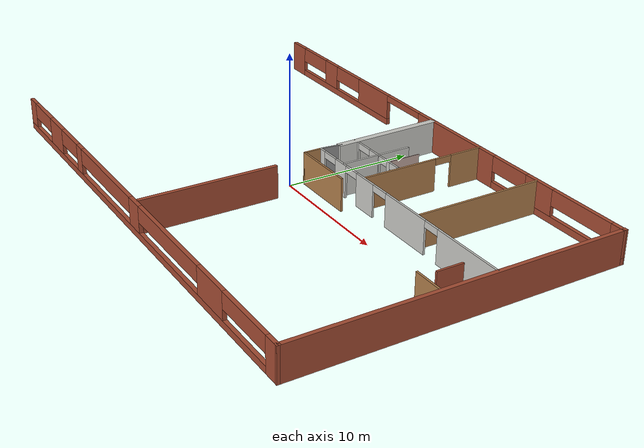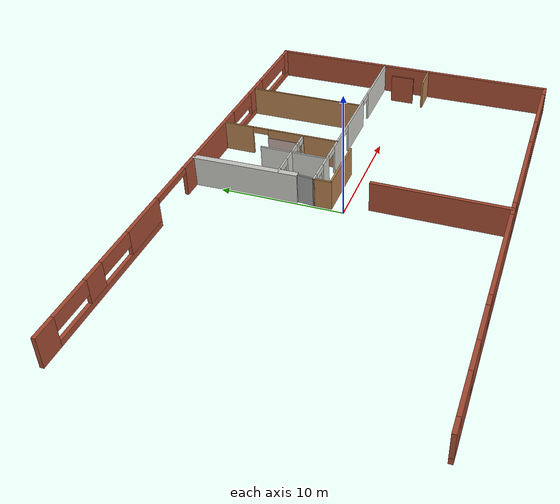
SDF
<sdf version="1.6">
 <model name="Building">
  <pose>-0.973623 0.034241 0 0 -0 0</pose>
  <link name="Wall_18">
   <pose>0.905623 12.3125 0 0 -0 0</pose>
   <visual name="Wall_18_Visual_0">
    <pose>-19.2672 0 1.25 0 -0 0</pose>
    <geometry><box><size>1.86558 0.3 2.5</size></box></geometry>
    <material>
     <script><uri>file://media/materials/scripts/gazebo.material</uri><name>Gazebo/Bricks</name></script>
     <ambient>1 1 1 1</ambient>
    </material>
    <meta><layer>0</layer></meta>
   </visual>
   <collision name="Wall_18_Collision_0">
    <geometry><box><size>1.86558 0.3 2.5</size></box></geometry>
    <pose>-19.2672 0 1.25 0 -0 0</pose>
   </collision>
   <visual name="Wall_18_Visual_1">
    <pose>3.08951 0 1.25 0 -0 0</pose>
    <geometry><box><size>8.93043 0.3 2.5</size></box></geometry>
    <material>
     <script><uri>file://media/materials/scripts/gazebo.material</uri><name>Gazebo/Bricks</name></script>
     <ambient>1 1 1 1</ambient>
    </material>
    <meta><layer>0</layer></meta>
   </visual>
   <collision name="Wall_18_Collision_1">
    <geometry><box><size>8.93043 0.3 2.5</size></box></geometry>
    <pose>3.08951 0 1.25 0 -0 0</pose>
   </collision>
   <visual name="Wall_18_Visual_2">
    <pose>-11.9358 0 0.25 0 -0 0</pose>
    <geometry><box><size>12.7972 0.3 0.5</size></box></geometry>
    <material>
     <script><uri>file://media/materials/scripts/gazebo.material</uri><name>Gazebo/Bricks</name></script>
     <ambient>1 1 1 1</ambient>
    </material>
    <meta><layer>0</layer></meta>
   </visual>
   <collision name="Wall_18_Collision_2">
    <geometry><box><size>12.7972 0.3 0.5</size></box></geometry>
    <pose>-11.9358 0 0.25 0 -0 0</pose>
   </collision>
   <visual name="Wall_18_Visual_3">
    <pose>13.8774 0 0.25 0 -0 0</pose>
    <geometry><box><size>12.6453 0.3 0.5</size></box></geometry>
    <material>
     <script><uri>file://media/materials/scripts/gazebo.material</uri><name>Gazebo/Bricks</name></script>
     <ambient>1 1 1 1</ambient>
    </material>
    <meta><layer>0</layer></meta>
   </visual>
   <collision name="Wall_18_Collision_3">
    <geometry><box><size>12.6453 0.3 0.5</size></box></geometry>
    <pose>13.8774 0 0.25 0 -0 0</pose>
   </collision>
   <visual name="Wall_18_Visual_4">
    <pose>-13.9321 0 1.5 0 -0 0</pose>
    <geometry><box><size>1.8072 0.3 2</size></box></geometry>
    <material>
     <script><uri>file://media/materials/scripts/gazebo.material</uri><name>Gazebo/Bricks</name></script>
     <ambient>1 1 1 1</ambient>
    </material>
    <meta><layer>0</layer></meta>
   </visual>
   <collision name="Wall_18_Collision_4">
    <geometry><box><size>1.8072 0.3 2</size></box></geometry>
    <pose>-13.9321 0 1.5 0 -0 0</pose>
   </collision>
   <visual name="Wall_18_Visual_5">
    <pose>-7.60468 0 1.5 0 -0 0</pose>
    <geometry><box><size>4.135 0.3 2</size></box></geometry>
    <material>
     <script><uri>file://media/materials/scripts/gazebo.material</uri><name>Gazebo/Bricks</name></script>
     <ambient>1 1 1 1</ambient>
    </material>
    <meta><layer>0</layer></meta>
   </visual>
   <collision name="Wall_18_Collision_5">
    <geometry><box><size>4.135 0.3 2</size></box></geometry>
    <pose>-7.60468 0 1.5 0 -0 0</pose>
   </collision>
   <visual name="Wall_18_Visual_6">
    <pose>-7.60468 0 1.5 0 -0 0</pose>
    <geometry><box><size>4.135 0.3 2</size></box></geometry>
    <material>
     <script><uri>file://media/materials/scripts/gazebo.material</uri><name>Gazebo/Bricks</name></script>
     <ambient>1 1 1 1</ambient>
    </material>
    <meta><layer>0</layer></meta>
   </visual>
   <collision name="Wall_18_Collision_6">
    <geometry><box><size>4.135 0.3 2</size></box></geometry>
    <pose>-7.60468 0 1.5 0 -0 0</pose>
   </collision>
   <visual name="Wall_18_Visual_7">
    <pose>12.3457 0 1.5 0 -0 0</pose>
    <geometry><box><size>2.62855 0.3 2</size></box></geometry>
    <material>
     <script><uri>file://media/materials/scripts/gazebo.material</uri><name>Gazebo/Bricks</name></script>
     <ambient>1 1 1 1</ambient>
    </material>
    <meta><layer>0</layer></meta>
   </visual>
   <collision name="Wall_18_Collision_7">
    <geometry><box><size>2.62855 0.3 2</size></box></geometry>
    <pose>12.3457 0 1.5 0 -0 0</pose>
   </collision>
   <visual name="Wall_18_Visual_8">
    <pose>19.6307 0 1.5 0 -0 0</pose>
    <geometry><box><size>1.13859 0.3 2</size></box></geometry>
    <material>
     <script><uri>file://media/materials/scripts/gazebo.material</uri><name>Gazebo/Bricks</name></script>
     <ambient>1 1 1 1</ambient>
    </material>
    <meta><layer>0</layer></meta>
   </visual>
   <collision name="Wall_18_Collision_8">
    <geometry><box><size>1.13859 0.3 2</size></box></geometry>
    <pose>19.6307 0 1.5 0 -0 0</pose>
   </collision>
   <visual name="Wall_18_Visual_9">
    <pose>-16.5851 0 1.9 0 -0 0</pose>
    <geometry><box><size>3.49867 0.3 1.2</size></box></geometry>
    <material>
     <script><uri>file://media/materials/scripts/gazebo.material</uri><name>Gazebo/Bricks</name></script>
     <ambient>1 1 1 1</ambient>
    </material>
    <meta><layer>0</layer></meta>
   </visual>
   <collision name="Wall_18_Collision_9">
    <geometry><box><size>3.49867 0.3 1.2</size></box></geometry>
    <pose>-16.5851 0 1.9 0 -0 0</pose>
   </collision>
   <visual name="Wall_18_Visual_10">
    <pose>9.29306 0 1.9 0 -0 0</pose>
    <geometry><box><size>3.47667 0.3 1.2</size></box></geometry>
    <material>
     <script><uri>file://media/materials/scripts/gazebo.material</uri><name>Gazebo/Bricks</name></script>
     <ambient>1 1 1 1</ambient>
    </material>
    <meta><layer>0</layer></meta>
   </visual>
   <collision name="Wall_18_Collision_10">
    <geometry><box><size>3.47667 0.3 1.2</size></box></geometry>
    <pose>9.29306 0 1.9 0 -0 0</pose>
   </collision>
   <visual name="Wall_18_Visual_11">
    <pose>-11.3504 0 1.9 0 -0 0</pose>
    <geometry><box><size>3.35637 0.3 1.2</size></box></geometry>
    <material>
     <script><uri>file://media/materials/scripts/gazebo.material</uri><name>Gazebo/Bricks</name></script>
     <ambient>1 1 1 1</ambient>
    </material>
    <meta><layer>0</layer></meta>
   </visual>
   <collision name="Wall_18_Collision_11">
    <geometry><box><size>3.35637 0.3 1.2</size></box></geometry>
    <pose>-11.3504 0 1.9 0 -0 0</pose>
   </collision>
   <visual name="Wall_18_Visual_12">
    <pose>16.3607 0 1.9 0 -0 0</pose>
    <geometry><box><size>5.40147 0.3 1.2</size></box></geometry>
    <material>
     <script><uri>file://media/materials/scripts/gazebo.material</uri><name>Gazebo/Bricks</name></script>
     <ambient>1 1 1 1</ambient>
    </material>
    <meta><layer>0</layer></meta>
   </visual>
   <collision name="Wall_18_Collision_12">
    <geometry><box><size>5.40147 0.3 1.2</size></box></geometry>
    <pose>16.3607 0 1.9 0 -0 0</pose>
   </collision>
   <visual name="Wall_18_Visual_13">
    <pose>-3.45644 0 2.25 0 -0 0</pose>
    <geometry><box><size>4.16148 0.3 0.5</size></box></geometry>
    <material>
     <script><uri>file://media/materials/scripts/gazebo.material</uri><name>Gazebo/Bricks</name></script>
     <ambient>1 1 1 1</ambient>
    </material>
    <meta><layer>0</layer></meta>
   </visual>
   <collision name="Wall_18_Collision_13">
    <geometry><box><size>4.16148 0.3 0.5</size></box></geometry>
    <pose>-3.45644 0 2.25 0 -0 0</pose>
   </collision>
   <visual name="Wall_18_Visual_14">
    <pose>-3.45644 0 2.25 0 -0 0</pose>
    <geometry><box><size>4.16148 0.3 0.5</size></box></geometry>
    <material>
     <script><uri>file://media/materials/scripts/gazebo.material</uri><name>Gazebo/Bricks</name></script>
     <ambient>1 1 1 1</ambient>
    </material>
    <meta><layer>0</layer></meta>
   </visual>
   <collision name="Wall_18_Collision_14">
    <geometry><box><size>4.16148 0.3 0.5</size></box></geometry>
    <pose>-3.45644 0 2.25 0 -0 0</pose>
   </collision>
  </link>
  <link name="Wall_19">
   <collision name="Wall_19_Collision">
    <geometry><box><size>24.9915 0.3 2.5</size></box></geometry>
    <pose>0 0 1.25 0 -0 0</pose>
   </collision>
   <visual name="Wall_19_Visual">
    <pose>0 0 1.25 0 -0 0</pose>
    <geometry><box><size>24.9915 0.3 2.5</size></box></geometry>
    <material>
     <script><uri>file://media/materials/scripts/gazebo.material</uri><name>Gazebo/Bricks</name></script>
     <ambient>1 1 1 1</ambient>
    </material>
    <meta><layer>0</layer></meta>
   </visual>
   <pose>20.9406 0.012499 0 0 0 -1.57201</pose>
  </link>
  <link name="Wall_20">
   <pose>1.39062 -12.3332 0 0 -0 3.14159</pose>
   <visual name="Wall_20_Visual_0">
    <pose>-19.0829 0 1.25 0 -0 0</pose>
    <geometry><box><size>1.20436 0.3 2.5</size></box></geometry>
    <material>
     <script><uri>file://media/materials/scripts/gazebo.material</uri><name>Gazebo/Bricks</name></script>
     <ambient>1 1 1 1</ambient>
    </material>
    <meta><layer>0</layer></meta>
   </visual>
   <collision name="Wall_20_Collision_0">
    <geometry><box><size>1.20436 0.3 2.5</size></box></geometry>
    <pose>-19.0829 0 1.25 0 -0 0</pose>
   </collision>
   <visual name="Wall_20_Visual_1">
    <pose>0.602179 0 0.25 0 -0 0</pose>
    <geometry><box><size>38.1657 0.3 0.5</size></box></geometry>
    <material>
     <script><uri>file://media/materials/scripts/gazebo.material</uri><name>Gazebo/Bricks</name></script>
     <ambient>1 1 1 1</ambient>
    </material>
    <meta><layer>0</layer></meta>
   </visual>
   <collision name="Wall_20_Collision_1">
    <geometry><box><size>38.1657 0.3 0.5</size></box></geometry>
    <pose>0.602179 0 0.25 0 -0 0</pose>
   </collision>
   <visual name="Wall_20_Visual_2">
    <pose>-11.7964 0 1.5 0 -0 0</pose>
    <geometry><box><size>3.25696 0.3 2</size></box></geometry>
    <material>
     <script><uri>file://media/materials/scripts/gazebo.material</uri><name>Gazebo/Bricks</name></script>
     <ambient>1 1 1 1</ambient>
    </material>
    <meta><layer>0</layer></meta>
   </visual>
   <collision name="Wall_20_Collision_2">
    <geometry><box><size>3.25696 0.3 2</size></box></geometry>
    <pose>-11.7964 0 1.5 0 -0 0</pose>
   </collision>
   <visual name="Wall_20_Visual_3">
    <pose>-0.778929 0 1.5 0 -0 0</pose>
    <geometry><box><size>1.5069 0.3 2</size></box></geometry>
    <material>
     <script><uri>file://media/materials/scripts/gazebo.material</uri><name>Gazebo/Bricks</name></script>
     <ambient>1 1 1 1</ambient>
    </material>
    <meta><layer>0</layer></meta>
   </visual>
   <collision name="Wall_20_Collision_3">
    <geometry><box><size>1.5069 0.3 2</size></box></geometry>
    <pose>-0.778929 0 1.5 0 -0 0</pose>
   </collision>
   <visual name="Wall_20_Visual_4">
    <pose>9.12483 0 1.5 0 -0 0</pose>
    <geometry><box><size>0.950063 0.3 2</size></box></geometry>
    <material>
     <script><uri>file://media/materials/scripts/gazebo.material</uri><name>Gazebo/Bricks</name></script>
     <ambient>1 1 1 1</ambient>
    </material>
    <meta><layer>0</layer></meta>
   </visual>
   <collision name="Wall_20_Collision_4">
    <geometry><box><size>0.950063 0.3 2</size></box></geometry>
    <pose>9.12483 0 1.5 0 -0 0</pose>
   </collision>
   <visual name="Wall_20_Visual_5">
    <pose>13.906 0 1.5 0 -0 0</pose>
    <geometry><box><size>2.47804 0.3 2</size></box></geometry>
    <material>
     <script><uri>file://media/materials/scripts/gazebo.material</uri><name>Gazebo/Bricks</name></script>
     <ambient>1 1 1 1</ambient>
    </material>
    <meta><layer>0</layer></meta>
   </visual>
   <collision name="Wall_20_Collision_5">
    <geometry><box><size>2.47804 0.3 2</size></box></geometry>
    <pose>13.906 0 1.5 0 -0 0</pose>
   </collision>
   <visual name="Wall_20_Visual_6">
    <pose>19.0878 0 1.5 0 -0 0</pose>
    <geometry><box><size>1.19447 0.3 2</size></box></geometry>
    <material>
     <script><uri>file://media/materials/scripts/gazebo.material</uri><name>Gazebo/Bricks</name></script>
     <ambient>1 1 1 1</ambient>
    </material>
    <meta><layer>0</layer></meta>
   </visual>
   <collision name="Wall_20_Collision_6">
    <geometry><box><size>1.19447 0.3 2</size></box></geometry>
    <pose>19.0878 0 1.5 0 -0 0</pose>
   </collision>
   <visual name="Wall_20_Visual_7">
    <pose>-15.9528 0 1.9 0 -0 0</pose>
    <geometry><box><size>5.05583 0.3 1.2</size></box></geometry>
    <material>
     <script><uri>file://media/materials/scripts/gazebo.material</uri><name>Gazebo/Bricks</name></script>
     <ambient>1 1 1 1</ambient>
    </material>
    <meta><layer>0</layer></meta>
   </visual>
   <collision name="Wall_20_Collision_7">
    <geometry><box><size>5.05583 0.3 1.2</size></box></geometry>
    <pose>-15.9528 0 1.9 0 -0 0</pose>
   </collision>
   <visual name="Wall_20_Visual_8">
    <pose>-5.85013 0 1.9 0 -0 0</pose>
    <geometry><box><size>8.63551 0.3 1.2</size></box></geometry>
    <material>
     <script><uri>file://media/materials/scripts/gazebo.material</uri><name>Gazebo/Bricks</name></script>
     <ambient>1 1 1 1</ambient>
    </material>
    <meta><layer>0</layer></meta>
   </visual>
   <collision name="Wall_20_Collision_8">
    <geometry><box><size>8.63551 0.3 1.2</size></box></geometry>
    <pose>-5.85013 0 1.9 0 -0 0</pose>
   </collision>
   <visual name="Wall_20_Visual_9">
    <pose>4.31216 0 1.9 0 -0 0</pose>
    <geometry><box><size>8.67528 0.3 1.2</size></box></geometry>
    <material>
     <script><uri>file://media/materials/scripts/gazebo.material</uri><name>Gazebo/Bricks</name></script>
     <ambient>1 1 1 1</ambient>
    </material>
    <meta><layer>0</layer></meta>
   </visual>
   <collision name="Wall_20_Collision_9">
    <geometry><box><size>8.67528 0.3 1.2</size></box></geometry>
    <pose>4.31216 0 1.9 0 -0 0</pose>
   </collision>
   <visual name="Wall_20_Visual_10">
    <pose>11.1334 0 1.9 0 -0 0</pose>
    <geometry><box><size>3.06713 0.3 1.2</size></box></geometry>
    <material>
     <script><uri>file://media/materials/scripts/gazebo.material</uri><name>Gazebo/Bricks</name></script>
     <ambient>1 1 1 1</ambient>
    </material>
    <meta><layer>0</layer></meta>
   </visual>
   <collision name="Wall_20_Collision_10">
    <geometry><box><size>3.06713 0.3 1.2</size></box></geometry>
    <pose>11.1334 0 1.9 0 -0 0</pose>
   </collision>
   <visual name="Wall_20_Visual_11">
    <pose>16.8178 0 1.9 0 -0 0</pose>
    <geometry><box><size>3.34554 0.3 1.2</size></box></geometry>
    <material>
     <script><uri>file://media/materials/scripts/gazebo.material</uri><name>Gazebo/Bricks</name></script>
     <ambient>1 1 1 1</ambient>
    </material>
    <meta><layer>0</layer></meta>
   </visual>
   <collision name="Wall_20_Collision_11">
    <geometry><box><size>3.34554 0.3 1.2</size></box></geometry>
    <pose>16.8178 0 1.9 0 -0 0</pose>
   </collision>
  </link>
  <link name="Wall_48">
   <collision name="Wall_48_Collision">
    <geometry><box><size>8.59954 0.5 2.5</size></box></geometry>
    <pose>0 0 1.25 0 -0 0</pose>
   </collision>
   <visual name="Wall_48_Visual">
    <pose>0 0 1.25 0 -0 0</pose>
    <geometry><box><size>8.59954 0.5 2.5</size></box></geometry>
    <material>
     <script><uri>file://media/materials/scripts/gazebo.material</uri><name>Gazebo/CeilingTiled</name></script>
     <ambient>1 1 1 1</ambient>
    </material>
    <meta><layer>0</layer></meta>
   </visual>
   <pose>1.325 8.04773 0 0 -0 1.5899</pose>
  </link>
  <link name="Wall_55">
   <collision name="Wall_55_Collision">
    <geometry><box><size>10.65 0.3 2.5</size></box></geometry>
    <pose>0 0 1.25 0 -0 0</pose>
   </collision>
   <visual name="Wall_55_Visual">
    <pose>0 0 1.25 0 -0 0</pose>
    <geometry><box><size>10.65 0.3 2.5</size></box></geometry>
    <material>
     <script><uri>file://media/materials/scripts/gazebo.material</uri><name>Gazebo/Bricks</name></script>
     <ambient>1 1 1 1</ambient>
    </material>
    <meta><layer>0</layer></meta>
   </visual>
   <pose>2.10262 -7.05454 0 0 0 -1.5708</pose>
  </link>
  <link name="Wall_76">
   <collision name="Wall_76_Collision">
    <geometry><box><size>1.75952 0.15 2.5</size></box></geometry>
    <pose>0 0 1.25 0 -0 0</pose>
   </collision>
   <visual name="Wall_76_Visual">
    <pose>0 0 1.25 0 -0 0</pose>
    <geometry><box><size>1.75952 0.15 2.5</size></box></geometry>
    <material>
     <script><uri>file://media/materials/scripts/gazebo.material</uri><name>Gazebo/Grey</name></script>
     <ambient>1 1 1 1</ambient>
    </material>
    <meta><layer>0</layer></meta>
   </visual>
   <pose>1.32499 3.19767 0 0 0 -1.66712</pose>
  </link>
  <link name="Wall_77">
   <pose>11.0476 2.39664 0 0 -0 0</pose>
   <visual name="Wall_77_Visual_0">
    <pose>-9.53901 0 1.25 0 -0 0</pose>
    <geometry><box><size>0.671981 0.15 2.5</size></box></geometry>
    <material>
     <script><uri>file://media/materials/scripts/gazebo.material</uri><name>Gazebo/CeilingTiled</name></script>
     <ambient>0.921569 0.807843 0.615686 1</ambient>
    </material>
    <meta><layer>0</layer></meta>
   </visual>
   <collision name="Wall_77_Collision_0">
    <geometry><box><size>0.671981 0.15 2.5</size></box></geometry>
    <pose>-9.53901 0 1.25 0 -0 0</pose>
   </collision>
   <visual name="Wall_77_Visual_1">
    <pose>-7.12805 0 1.25 0 -0 0</pose>
    <geometry><box><size>1.31821 0.15 2.5</size></box></geometry>
    <material>
     <script><uri>file://media/materials/scripts/gazebo.material</uri><name>Gazebo/CeilingTiled</name></script>
     <ambient>0.921569 0.807843 0.615686 1</ambient>
    </material>
    <meta><layer>0</layer></meta>
   </visual>
   <collision name="Wall_77_Collision_1">
    <geometry><box><size>1.31821 0.15 2.5</size></box></geometry>
    <pose>-7.12805 0 1.25 0 -0 0</pose>
   </collision>
   <visual name="Wall_77_Visual_2">
    <pose>-4.09575 0 1.25 0 -0 0</pose>
    <geometry><box><size>2.01783 0.15 2.5</size></box></geometry>
    <material>
     <script><uri>file://media/materials/scripts/gazebo.material</uri><name>Gazebo/CeilingTiled</name></script>
     <ambient>0.921569 0.807843 0.615686 1</ambient>
    </material>
    <meta><layer>0</layer></meta>
   </visual>
   <collision name="Wall_77_Collision_2">
    <geometry><box><size>2.01783 0.15 2.5</size></box></geometry>
    <pose>-4.09575 0 1.25 0 -0 0</pose>
   </collision>
   <visual name="Wall_77_Visual_3">
    <pose>0.576423 0 1.25 0 -0 0</pose>
    <geometry><box><size>4.33726 0.15 2.5</size></box></geometry>
    <material>
     <script><uri>file://media/materials/scripts/gazebo.material</uri><name>Gazebo/CeilingTiled</name></script>
     <ambient>0.921569 0.807843 0.615686 1</ambient>
    </material>
    <meta><layer>0</layer></meta>
   </visual>
   <collision name="Wall_77_Collision_3">
    <geometry><box><size>4.33726 0.15 2.5</size></box></geometry>
    <pose>0.576423 0 1.25 0 -0 0</pose>
   </collision>
   <visual name="Wall_77_Visual_4">
    <pose>6.97729 0 1.25 0 -0 0</pose>
    <geometry><box><size>5.79542 0.15 2.5</size></box></geometry>
    <material>
     <script><uri>file://media/materials/scripts/gazebo.material</uri><name>Gazebo/CeilingTiled</name></script>
     <ambient>0.921569 0.807843 0.615686 1</ambient>
    </material>
    <meta><layer>0</layer></meta>
   </visual>
   <collision name="Wall_77_Collision_4">
    <geometry><box><size>5.79542 0.15 2.5</size></box></geometry>
    <pose>6.97729 0 1.25 0 -0 0</pose>
   </collision>
   <visual name="Wall_77_Visual_5">
    <pose>-8.49509 0 2.25 0 -0 0</pose>
    <geometry><box><size>1.41586 0.15 0.5</size></box></geometry>
    <material>
     <script><uri>file://media/materials/scripts/gazebo.material</uri><name>Gazebo/CeilingTiled</name></script>
     <ambient>0.921569 0.807843 0.615686 1</ambient>
    </material>
    <meta><layer>0</layer></meta>
   </visual>
   <collision name="Wall_77_Collision_5">
    <geometry><box><size>1.41586 0.15 0.5</size></box></geometry>
    <pose>-8.49509 0 2.25 0 -0 0</pose>
   </collision>
   <visual name="Wall_77_Visual_6">
    <pose>-5.7868 0 2.25 0 -0 0</pose>
    <geometry><box><size>1.36428 0.15 0.5</size></box></geometry>
    <material>
     <script><uri>file://media/materials/scripts/gazebo.material</uri><name>Gazebo/CeilingTiled</name></script>
     <ambient>0.921569 0.807843 0.615686 1</ambient>
    </material>
    <meta><layer>0</layer></meta>
   </visual>
   <collision name="Wall_77_Collision_6">
    <geometry><box><size>1.36428 0.15 0.5</size></box></geometry>
    <pose>-5.7868 0 2.25 0 -0 0</pose>
   </collision>
   <visual name="Wall_77_Visual_7">
    <pose>-2.33952 0 2.25 0 -0 0</pose>
    <geometry><box><size>1.49462 0.15 0.5</size></box></geometry>
    <material>
     <script><uri>file://media/materials/scripts/gazebo.material</uri><name>Gazebo/CeilingTiled</name></script>
     <ambient>0.921569 0.807843 0.615686 1</ambient>
    </material>
    <meta><layer>0</layer></meta>
   </visual>
   <collision name="Wall_77_Collision_7">
    <geometry><box><size>1.49462 0.15 0.5</size></box></geometry>
    <pose>-2.33952 0 2.25 0 -0 0</pose>
   </collision>
   <visual name="Wall_77_Visual_8">
    <pose>3.41232 0 2.25 0 -0 0</pose>
    <geometry><box><size>1.33453 0.15 0.5</size></box></geometry>
    <material>
     <script><uri>file://media/materials/scripts/gazebo.material</uri><name>Gazebo/CeilingTiled</name></script>
     <ambient>0.921569 0.807843 0.615686 1</ambient>
    </material>
    <meta><layer>0</layer></meta>
   </visual>
   <collision name="Wall_77_Collision_8">
    <geometry><box><size>1.33453 0.15 0.5</size></box></geometry>
    <pose>3.41232 0 2.25 0 -0 0</pose>
   </collision>
  </link>
  <link name="Wall_80">
   <pose>6.79105 7.35843 0 0 0 -1.5708</pose>
   <visual name="Wall_80_Visual_0">
    <pose>-3.66248 0 1.25 0 -0 0</pose>
    <geometry><box><size>2.67504 0.15 2.5</size></box></geometry>
    <material>
     <script><uri>file://media/materials/scripts/gazebo.material</uri><name>Gazebo/Wood</name></script>
     <ambient>1 1 1 1</ambient>
    </material>
    <meta><layer>0</layer></meta>
   </visual>
   <collision name="Wall_80_Collision_0">
    <geometry><box><size>2.67504 0.15 2.5</size></box></geometry>
    <pose>-3.66248 0 1.25 0 -0 0</pose>
   </collision>
   <visual name="Wall_80_Visual_1">
    <pose>2.00479 0 1.25 0 -0 0</pose>
    <geometry><box><size>5.99042 0.15 2.5</size></box></geometry>
    <material>
     <script><uri>file://media/materials/scripts/gazebo.material</uri><name>Gazebo/Wood</name></script>
     <ambient>1 1 1 1</ambient>
    </material>
    <meta><layer>0</layer></meta>
   </visual>
   <collision name="Wall_80_Collision_1">
    <geometry><box><size>5.99042 0.15 2.5</size></box></geometry>
    <pose>2.00479 0 1.25 0 -0 0</pose>
   </collision>
   <visual name="Wall_80_Visual_2">
    <pose>-1.65769 0 2.25 0 -0 0</pose>
    <geometry><box><size>1.33453 0.15 0.5</size></box></geometry>
    <material>
     <script><uri>file://media/materials/scripts/gazebo.material</uri><name>Gazebo/Wood</name></script>
     <ambient>1 1 1 1</ambient>
    </material>
    <meta><layer>0</layer></meta>
   </visual>
   <collision name="Wall_80_Collision_2">
    <geometry><box><size>1.33453 0.15 0.5</size></box></geometry>
    <pose>-1.65769 0 2.25 0 -0 0</pose>
   </collision>
  </link>
  <link name="Wall_84">
   <collision name="Wall_84_Collision">
    <geometry><box><size>5.5 0.15 2.5</size></box></geometry>
    <pose>0 0 1.25 0 -0 0</pose>
   </collision>
   <visual name="Wall_84_Visual">
    <pose>0 0 1.25 0 -0 0</pose>
    <geometry><box><size>5.5 0.15 2.5</size></box></geometry>
    <material>
     <script><uri>file://media/materials/scripts/gazebo.material</uri><name>Gazebo/CeilingTiled</name></script>
     <ambient>1 1 1 1</ambient>
    </material>
    <meta><layer>0</layer></meta>
   </visual>
   <pose>4.2046 5.15734 0 0 0 -1.5708</pose>
  </link>
  <link name="Wall_86">
   <pose>3.93226 5.30604 0 0 -0 0</pose>
   <visual name="Wall_86_Visual_0">
    <pose>-2.44464 0 1.25 0 -0 0</pose>
    <geometry><box><size>0.610725 0.15 2.5</size></box></geometry>
    <material>
     <script><uri>file://media/materials/scripts/gazebo.material</uri><name>Gazebo/CeilingTiled</name></script>
     <ambient>1 1 1 1</ambient>
    </material>
    <meta><layer>0</layer></meta>
   </visual>
   <collision name="Wall_86_Collision_0">
    <geometry><box><size>0.610725 0.15 2.5</size></box></geometry>
    <pose>-2.44464 0 1.25 0 -0 0</pose>
   </collision>
   <visual name="Wall_86_Visual_1">
    <pose>-0.167477 0 1.25 0 -0 0</pose>
    <geometry><box><size>1.21504 0.15 2.5</size></box></geometry>
    <material>
     <script><uri>file://media/materials/scripts/gazebo.material</uri><name>Gazebo/CeilingTiled</name></script>
     <ambient>1 1 1 1</ambient>
    </material>
    <meta><layer>0</layer></meta>
   </visual>
   <collision name="Wall_86_Collision_1">
    <geometry><box><size>1.21504 0.15 2.5</size></box></geometry>
    <pose>-0.167477 0 1.25 0 -0 0</pose>
   </collision>
   <visual name="Wall_86_Visual_2">
    <pose>1.58216 0 1.25 0 -0 0</pose>
    <geometry><box><size>0.34667 0.15 2.5</size></box></geometry>
    <material>
     <script><uri>file://media/materials/scripts/gazebo.material</uri><name>Gazebo/CeilingTiled</name></script>
     <ambient>1 1 1 1</ambient>
    </material>
    <meta><layer>0</layer></meta>
   </visual>
   <collision name="Wall_86_Collision_2">
    <geometry><box><size>0.34667 0.15 2.5</size></box></geometry>
    <pose>1.58216 0 1.25 0 -0 0</pose>
   </collision>
   <visual name="Wall_86_Visual_3">
    <pose>2.70275 0 1.25 0 -0 0</pose>
    <geometry><box><size>0.094504 0.15 2.5</size></box></geometry>
    <material>
     <script><uri>file://media/materials/scripts/gazebo.material</uri><name>Gazebo/CeilingTiled</name></script>
     <ambient>1 1 1 1</ambient>
    </material>
    <meta><layer>0</layer></meta>
   </visual>
   <collision name="Wall_86_Collision_3">
    <geometry><box><size>0.094504 0.15 2.5</size></box></geometry>
    <pose>2.70275 0 1.25 0 -0 0</pose>
   </collision>
   <visual name="Wall_86_Visual_4">
    <pose>-1.45714 0 2.25 0 -0 0</pose>
    <geometry><box><size>1.36428 0.15 0.5</size></box></geometry>
    <material>
     <script><uri>file://media/materials/scripts/gazebo.material</uri><name>Gazebo/CeilingTiled</name></script>
     <ambient>1 1 1 1</ambient>
    </material>
    <meta><layer>0</layer></meta>
   </visual>
   <collision name="Wall_86_Collision_4">
    <geometry><box><size>1.36428 0.15 0.5</size></box></geometry>
    <pose>-1.45714 0 2.25 0 -0 0</pose>
   </collision>
   <visual name="Wall_86_Visual_5">
    <pose>0.924435 0 2.25 0 -0 0</pose>
    <geometry><box><size>0.968782 0.15 0.5</size></box></geometry>
    <material>
     <script><uri>file://media/materials/scripts/gazebo.material</uri><name>Gazebo/CeilingTiled</name></script>
     <ambient>1 1 1 1</ambient>
    </material>
    <meta><layer>0</layer></meta>
   </visual>
   <collision name="Wall_86_Collision_5">
    <geometry><box><size>0.968782 0.15 0.5</size></box></geometry>
    <pose>0.924435 0 2.25 0 -0 0</pose>
   </collision>
   <visual name="Wall_86_Visual_6">
    <pose>2.2055 0 2.25 0 -0 0</pose>
    <geometry><box><size>0.9 0.15 0.5</size></box></geometry>
    <material>
     <script><uri>file://media/materials/scripts/gazebo.material</uri><name>Gazebo/CeilingTiled</name></script>
     <ambient>1 1 1 1</ambient>
    </material>
    <meta><layer>0</layer></meta>
   </visual>
   <collision name="Wall_86_Collision_6">
    <geometry><box><size>0.9 0.15 0.5</size></box></geometry>
    <pose>2.2055 0 2.25 0 -0 0</pose>
   </collision>
  </link>
  <link name="Wall_88">
   <collision name="Wall_88_Collision">
    <geometry><box><size>1.5 0.15 2.5</size></box></geometry>
    <pose>0 0 1.25 0 -0 0</pose>
   </collision>
   <visual name="Wall_88_Visual">
    <pose>0 0 1.25 0 -0 0</pose>
    <geometry><box><size>1.5 0.15 2.5</size></box></geometry>
    <material>
     <script><uri>file://media/materials/scripts/gazebo.material</uri><name>Gazebo/Wood</name></script>
     <ambient>1 1 1 1</ambient>
    </material>
    <meta><layer>0</layer></meta>
   </visual>
   <pose>1.24759 1.72164 0 0 0 -1.5708</pose>
  </link>
  <link name="Wall_89">
   <collision name="Wall_89_Collision">
    <geometry><box><size>5 0.15 2.5</size></box></geometry>
    <pose>0 0 1.25 0 -0 0</pose>
   </collision>
   <visual name="Wall_89_Visual">
    <pose>0 0 1.25 0 -0 0</pose>
    <geometry><box><size>5 0.15 2.5</size></box></geometry>
    <material>
     <script><uri>file://media/materials/scripts/gazebo.material</uri><name>Gazebo/Wood</name></script>
     <ambient>1 1 1 1</ambient>
    </material>
    <meta><layer>0</layer></meta>
   </visual>
   <pose>3.67259 1.04664 0 0 -0 0</pose>
  </link>
  <link name="Wall_91">
   <collision name="Wall_91_Collision">
    <geometry><box><size>2.25 0.15 2.5</size></box></geometry>
    <pose>0 0 1.25 0 -0 0</pose>
   </collision>
   <visual name="Wall_91_Visual">
    <pose>0 0 1.25 0 -0 0</pose>
    <geometry><box><size>2.25 0.15 2.5</size></box></geometry>
    <material>
     <script><uri>file://media/materials/scripts/gazebo.material</uri><name>Gazebo/Wood</name></script>
     <ambient>1 1 1 1</ambient>
    </material>
    <meta><layer>0</layer></meta>
   </visual>
   <pose>19.6906 -1.7315 0 0 -0 0</pose>
  </link>
  <link name="Wall_93">
   <collision name="Wall_93_Collision">
    <geometry><box><size>2 0.15 2.5</size></box></geometry>
    <pose>0 0 1.25 0 -0 0</pose>
   </collision>
   <visual name="Wall_93_Visual">
    <pose>0 0 1.25 0 -0 0</pose>
    <geometry><box><size>2 0.15 2.5</size></box></geometry>
    <material>
     <script><uri>file://media/materials/scripts/gazebo.material</uri><name>Gazebo/Bricks</name></script>
     <ambient>1 1 1 1</ambient>
    </material>
    <meta><layer>0</layer></meta>
   </visual>
   <pose>19.1519 0.230697 0 0 0 -1.5708</pose>
  </link>
  <link name="Wall_95">
   <collision name="Wall_95_Collision">
    <geometry><box><size>9.75 0.15 2.5</size></box></geometry>
    <pose>0 0 1.25 0 -0 0</pose>
   </collision>
   <visual name="Wall_95_Visual">
    <pose>0 0 1.25 0 -0 0</pose>
    <geometry><box><size>9.75 0.15 2.5</size></box></geometry>
    <material>
     <script><uri>file://media/materials/scripts/gazebo.material</uri><name>Gazebo/Wood</name></script>
     <ambient>1 1 1 1</ambient>
    </material>
    <meta><layer>0</layer></meta>
   </visual>
   <pose>12.9865 7.39321 0 0 0 -1.5708</pose>
  </link>
  <link name="Wall_97">
   <collision name="Wall_97_Collision">
    <geometry><box><size>2.39986 0.05 2.5</size></box></geometry>
    <pose>0 0 1.25 0 -0 0</pose>
   </collision>
   <visual name="Wall_97_Visual">
    <pose>0 0 1.25 0 -0 0</pose>
    <geometry><box><size>2.39986 0.05 2.5</size></box></geometry>
    <material>
     <script><uri>file://media/materials/scripts/gazebo.material</uri><name>Gazebo/Grey</name></script>
     <ambient>0.760784 0.662745 0.627451 1</ambient>
    </material>
    <meta><layer>0</layer></meta>
   </visual>
   <pose>5.54862 6.64876 0 0 0 -1.5708</pose>
  </link>
  <static>1</static>
 </model>
</sdf>
